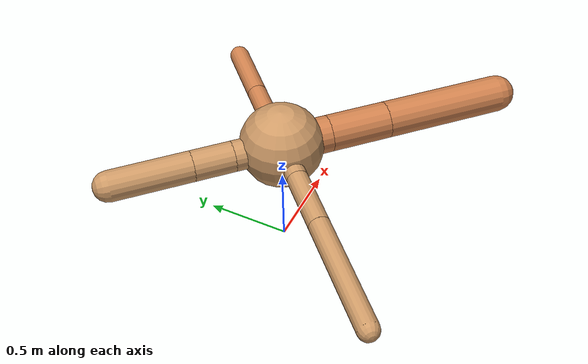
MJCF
<?xml version="1.0" ?>
<mujoco model="ant">

	<compiler angle="degree" coordinate="local" inertiafromgeom="true"/>

	<option integrator="RK4" timestep="0.01"/>

	<custom>

		<numeric data="0.0 0.0 0.55 1.0 0.0 0.0 0.0 0.0 1.0 0.0 -1.0 0.0 -1.0 0.0 1.0" name="init_qpos"/>

	</custom>

	<default>

		<joint armature="1" damping="1" limited="true"/>

		<geom conaffinity="0" condim="3" density="5.0" friction="1.5 0.1 0.1" margin="0.01" rgba="0.8 0.6 0.4 1"/>

	</default>

	<worldbody>

		<body name="torso" pos="0 0 0.75">

			<geom name="torso_geom" pos="0 0 0" size="0.24297335540027298" type="sphere"/>

			<!--joint armature="0" damping="0" limited="false" margin="0.01" name="root" pos="0 0 0" type="free"/-->

			<body name="front_left_leg" pos="0 0 0">

				<geom fromto="0 0 0 0.2 0.2 0" name="aux_1_geom" size="0.057292503300308474" type="capsule" rgba=".8 .5 .3 1"/>

				<body name="aux_1" pos="0.2 0.2 0">

					<joint axis="0 0 1" name="hip_1" pos="0.0 0.0 0.0" range="-40 40" type="hinge"/>

					<geom fromto="0 0 0 0.130315208214496 0.130315208214496 0" name="left_leg_geom" size="0.057292503300308474" type="capsule" rgba=".8 .5 .3 1"/>

					<body pos="0.130315208214496 0.130315208214496 0" name="front_left_foot">

						<joint axis="-1 1 0" name="ankle_1" pos="0.0 0.0 0.0" range="30 100" type="hinge"/>

						<geom fromto="0 0 0 0.260630416428992 0.260630416428992 0" name="left_ankle_geom" size="0.057292503300308474" type="capsule" rgba=".8 .5 .3 1"/>

					</body>

				</body>

			</body>

			<body name="front_right_leg" pos="0 0 0">

				<geom fromto="0 0 0 -0.2 0.2 0" name="aux_2_geom" size="0.08809899515224334" type="capsule"/>

				<body name="aux_2" pos="-0.2 0.2 0">

					<joint axis="0 0 1" name="hip_2" pos="0.0 0.0 0.0" range="-40 40" type="hinge"/>

					<geom fromto="0 0 0 -0.1664672658689711 0.1664672658689711 0" name="right_leg_geom" size="0.08809899515224334" type="capsule"/>

					<body pos="-0.1664672658689711 0.1664672658689711 0" name="front_right_foot">

						<joint axis="1 1 0" name="ankle_2" pos="0.0 0.0 0.0" range="-100 -30" type="hinge"/>

						<geom fromto="0 0 0 -0.3329345317379422 0.3329345317379422 0" name="right_ankle_geom" size="0.08809899515224334" type="capsule"/>

					</body>

				</body>

			</body>

			<body name="left_back_leg" pos="0 0 0">

				<geom fromto="0 0 0 -0.2 -0.2 0" name="aux_3_geom" size="0.061866576746411626" type="capsule"/>

				<body name="aux_3" pos="-0.2 -0.2 0">

					<joint axis="0 0 1" name="hip_3" pos="0.0 0.0 0.0" range="-40 40" type="hinge"/>

					<geom fromto="0 0 0 -0.2511017762714286 -0.2511017762714286 0" name="back_leg_geom" size="0.061866576746411626" type="capsule"/>

					<body pos="-0.2511017762714286 -0.2511017762714286 0" name="left_back_foot">

						<joint axis="-1 1 0" name="ankle_3" pos="0.0 0.0 0.0" range="-100 -30" type="hinge"/>

						<geom fromto="0 0 0 -0.5022035525428572 -0.5022035525428572 0" name="third_ankle_geom" size="0.061866576746411626" type="capsule"/>

					</body>

				</body>

			</body>

			<body name="right_back_leg" pos="0 0 0">

				<geom fromto="0 0 0 0.2 -0.2 0" name="aux_4_geom" size="0.10549492621043743" type="capsule" rgba=".8 .5 .3 1"/>

				<body name="aux_4" pos="0.2 -0.2 0">

					<joint axis="0 0 1" name="hip_4" pos="0.0 0.0 0.0" range="-40 40" type="hinge"/>

					<geom fromto="0 0 0 0.24779471932712605 -0.24779471932712605 0" name="rightback_leg_geom" size="0.10549492621043743" type="capsule" rgba=".8 .5 .3 1"/>

					<body pos="0.24779471932712605 -0.24779471932712605 0" name="right_back_foot">

						<joint axis="1 1 0" name="ankle_4" pos="0.0 0.0 0.0" range="30 100" type="hinge"/>

						<geom fromto="0 0 0 0.4955894386542521 -0.4955894386542521 0" name="fourth_ankle_geom" size="0.10549492621043743" type="capsule" rgba=".8 .5 .3 1"/>

					</body>

				</body>

			</body>

		</body>

	</worldbody>

	<actuator>

		<motor ctrllimited="true" ctrlrange="-1.0 1.0" joint="hip_4" gear="150"/>

		<motor ctrllimited="true" ctrlrange="-1.0 1.0" joint="ankle_4" gear="150"/>

		<motor ctrllimited="true" ctrlrange="-1.0 1.0" joint="hip_1" gear="150"/>

		<motor ctrllimited="true" ctrlrange="-1.0 1.0" joint="ankle_1" gear="150"/>

		<motor ctrllimited="true" ctrlrange="-1.0 1.0" joint="hip_2" gear="150"/>

		<motor ctrllimited="true" ctrlrange="-1.0 1.0" joint="ankle_2" gear="150"/>

		<motor ctrllimited="true" ctrlrange="-1.0 1.0" joint="hip_3" gear="150"/>

		<motor ctrllimited="true" ctrlrange="-1.0 1.0" joint="ankle_3" gear="150"/>

	</actuator>

</mujoco>
